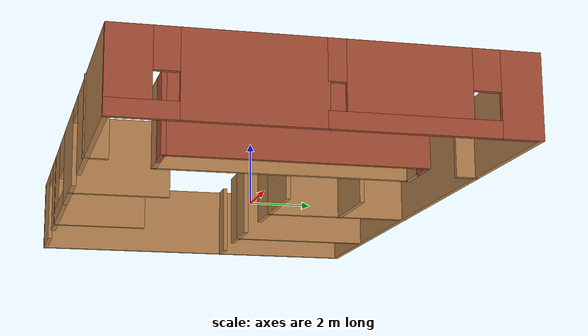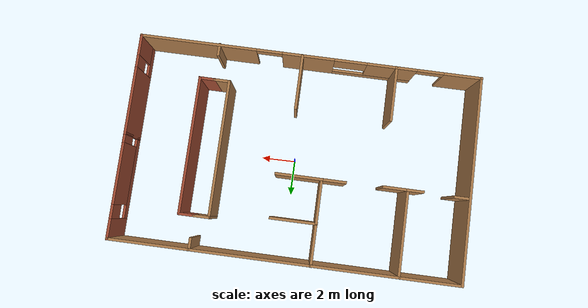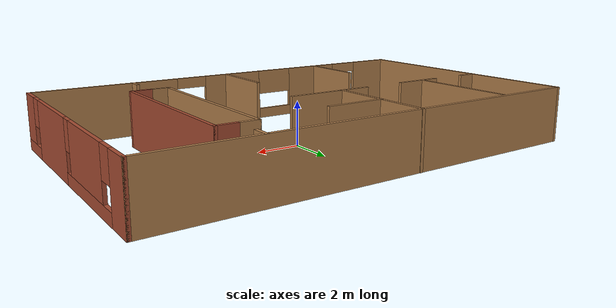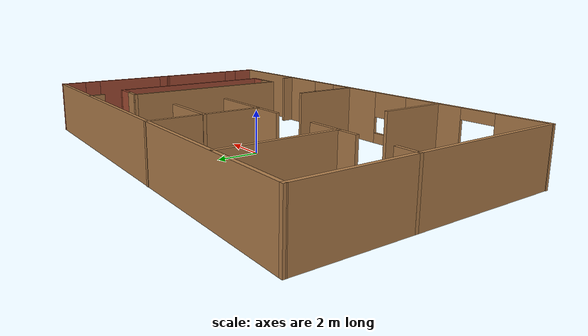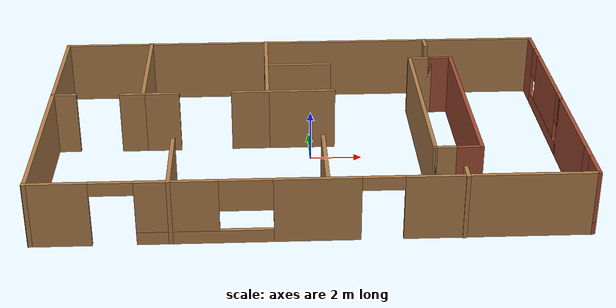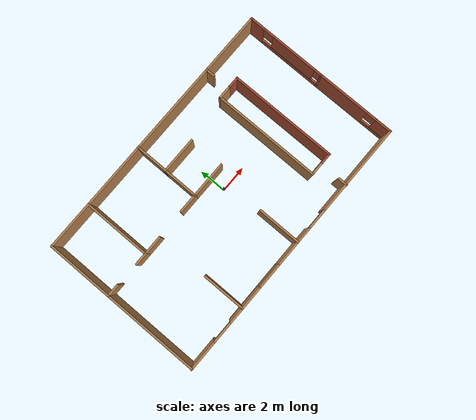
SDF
<?xml version='1.0'?>
<sdf version='1.7'>
  <model name='restaurant'>
    <pose>-0.158341 -0.051022 0 0 -0 0</pose>
    <link name='Wall_14'>
      <pose>9.93178 -2.98994 0 0 -0 -1.56964</pose>
      <visual name='Wall_14_Visual_0'>
        <pose>-0.989557 0 1.25 0 -0 0</pose>
        <geometry>
          <box>
            <size>3.98617 0.15 2.5</size>
          </box>
        </geometry>
        <material>
          <script>
            <uri>file://media/materials/scripts/gazebo.material</uri>
            <name>Gazebo/Bricks</name>
          </script>
          <ambient>1 1 1 1</ambient>
        </material>
        <meta>
          <layer>0</layer>
        </meta>
      </visual>
      <collision name='Wall_14_Collision_0'>
        <geometry>
          <box>
            <size>3.98617 0.15 2.5</size>
          </box>
        </geometry>
        <pose>-0.989557 0 1.25 0 -0 0</pose>
      </collision>
      <visual name='Wall_14_Visual_1'>
        <pose>1.99308 0 0.25 0 -0 0</pose>
        <geometry>
          <box>
            <size>1.97911 0.15 0.5</size>
          </box>
        </geometry>
        <material>
          <script>
            <uri>file://media/materials/scripts/gazebo.material</uri>
            <name>Gazebo/Bricks</name>
          </script>
          <ambient>1 1 1 1</ambient>
        </material>
        <meta>
          <layer>0</layer>
        </meta>
      </visual>
      <collision name='Wall_14_Collision_1'>
        <geometry>
          <box>
            <size>1.97911 0.15 0.5</size>
          </box>
        </geometry>
        <pose>1.99308 0 0.25 0 -0 0</pose>
      </collision>
      <visual name='Wall_14_Visual_2'>
        <pose>2.35186 0 1.5 0 -0 0</pose>
        <geometry>
          <box>
            <size>1.26156 0.15 2</size>
          </box>
        </geometry>
        <material>
          <script>
            <uri>file://media/materials/scripts/gazebo.material</uri>
            <name>Gazebo/Bricks</name>
          </script>
          <ambient>1 1 1 1</ambient>
        </material>
        <meta>
          <layer>0</layer>
        </meta>
      </visual>
      <collision name='Wall_14_Collision_2'>
        <geometry>
          <box>
            <size>1.26156 0.15 2</size>
          </box>
        </geometry>
        <pose>2.35186 0 1.5 0 -0 0</pose>
      </collision>
      <visual name='Wall_14_Visual_3'>
        <pose>1.36231 0 1.9 0 -0 0</pose>
        <geometry>
          <box>
            <size>0.717555 0.15 1.2</size>
          </box>
        </geometry>
        <material>
          <script>
            <uri>file://media/materials/scripts/gazebo.material</uri>
            <name>Gazebo/Bricks</name>
          </script>
          <ambient>1 1 1 1</ambient>
        </material>
        <meta>
          <layer>0</layer>
        </meta>
      </visual>
      <collision name='Wall_14_Collision_3'>
        <geometry>
          <box>
            <size>0.717555 0.15 1.2</size>
          </box>
        </geometry>
        <pose>1.36231 0 1.9 0 -0 0</pose>
      </collision>
    </link>
    <link name='Wall_15'>
      <pose>-0.010231 -5.89748 0 0 -0 3.14159</pose>
      <visual name='Wall_15_Visual_0'>
        <pose>-6.59523 0 1.25 0 -0 0</pose>
        <geometry>
          <box>
            <size>6.80954 0.15 2.5</size>
          </box>
        </geometry>
        <material>
          <script>
            <uri>file://media/materials/scripts/gazebo.material</uri>
            <name>Gazebo/Wood</name>
          </script>
          <ambient>1 1 1 1</ambient>
        </material>
        <meta>
          <layer>0</layer>
        </meta>
      </visual>
      <collision name='Wall_15_Collision_0'>
        <geometry>
          <box>
            <size>6.80954 0.15 2.5</size>
          </box>
        </geometry>
        <pose>-6.59523 0 1.25 0 -0 0</pose>
      </collision>
      <visual name='Wall_15_Visual_1'>
        <pose>-0.152511 0 1.25 0 -0 0</pose>
        <geometry>
          <box>
            <size>3.07169 0.15 2.5</size>
          </box>
        </geometry>
        <material>
          <script>
            <uri>file://media/materials/scripts/gazebo.material</uri>
            <name>Gazebo/Wood</name>
          </script>
          <ambient>1 1 1 1</ambient>
        </material>
        <meta>
          <layer>0</layer>
        </meta>
      </visual>
      <collision name='Wall_15_Collision_1'>
        <geometry>
          <box>
            <size>3.07169 0.15 2.5</size>
          </box>
        </geometry>
        <pose>-0.152511 0 1.25 0 -0 0</pose>
      </collision>
      <visual name='Wall_15_Visual_2'>
        <pose>8.87248 0 1.25 0 -0 0</pose>
        <geometry>
          <box>
            <size>2.25504 0.15 2.5</size>
          </box>
        </geometry>
        <material>
          <script>
            <uri>file://media/materials/scripts/gazebo.material</uri>
            <name>Gazebo/Wood</name>
          </script>
          <ambient>1 1 1 1</ambient>
        </material>
        <meta>
          <layer>0</layer>
        </meta>
      </visual>
      <collision name='Wall_15_Collision_2'>
        <geometry>
          <box>
            <size>2.25504 0.15 2.5</size>
          </box>
        </geometry>
        <pose>8.87248 0 1.25 0 -0 0</pose>
      </collision>
      <visual name='Wall_15_Visual_3'>
        <pose>3.7864 0 0.25 0 -0 0</pose>
        <geometry>
          <box>
            <size>4.80612 0.15 0.5</size>
          </box>
        </geometry>
        <material>
          <script>
            <uri>file://media/materials/scripts/gazebo.material</uri>
            <name>Gazebo/Wood</name>
          </script>
          <ambient>1 1 1 1</ambient>
        </material>
        <meta>
          <layer>0</layer>
        </meta>
      </visual>
      <collision name='Wall_15_Collision_3'>
        <geometry>
          <box>
            <size>4.80612 0.15 0.5</size>
          </box>
        </geometry>
        <pose>3.7864 0 0.25 0 -0 0</pose>
      </collision>
      <visual name='Wall_15_Visual_4'>
        <pose>4.72994 0 1.5 0 -0 0</pose>
        <geometry>
          <box>
            <size>2.91902 0.15 2</size>
          </box>
        </geometry>
        <material>
          <script>
            <uri>file://media/materials/scripts/gazebo.material</uri>
            <name>Gazebo/Wood</name>
          </script>
          <ambient>1 1 1 1</ambient>
        </material>
        <meta>
          <layer>0</layer>
        </meta>
      </visual>
      <collision name='Wall_15_Collision_4'>
        <geometry>
          <box>
            <size>2.91902 0.15 2</size>
          </box>
        </geometry>
        <pose>4.72994 0 1.5 0 -0 0</pose>
      </collision>
      <visual name='Wall_15_Visual_5'>
        <pose>2.32688 0 1.9 0 -0 0</pose>
        <geometry>
          <box>
            <size>1.88709 0.15 1.2</size>
          </box>
        </geometry>
        <material>
          <script>
            <uri>file://media/materials/scripts/gazebo.material</uri>
            <name>Gazebo/Wood</name>
          </script>
          <ambient>1 1 1 1</ambient>
        </material>
        <meta>
          <layer>0</layer>
        </meta>
      </visual>
      <collision name='Wall_15_Collision_5'>
        <geometry>
          <box>
            <size>1.88709 0.15 1.2</size>
          </box>
        </geometry>
        <pose>2.32688 0 1.9 0 -0 0</pose>
      </collision>
      <visual name='Wall_15_Visual_6'>
        <pose>-2.43941 0 2.25 0 -0 0</pose>
        <geometry>
          <box>
            <size>1.5021 0.15 0.5</size>
          </box>
        </geometry>
        <material>
          <script>
            <uri>file://media/materials/scripts/gazebo.material</uri>
            <name>Gazebo/Wood</name>
          </script>
          <ambient>1 1 1 1</ambient>
        </material>
        <meta>
          <layer>0</layer>
        </meta>
      </visual>
      <collision name='Wall_15_Collision_6'>
        <geometry>
          <box>
            <size>1.5021 0.15 0.5</size>
          </box>
        </geometry>
        <pose>-2.43941 0 2.25 0 -0 0</pose>
      </collision>
      <visual name='Wall_15_Visual_7'>
        <pose>6.9672 0 2.25 0 -0 0</pose>
        <geometry>
          <box>
            <size>1.5555 0.15 0.5</size>
          </box>
        </geometry>
        <material>
          <script>
            <uri>file://media/materials/scripts/gazebo.material</uri>
            <name>Gazebo/Wood</name>
          </script>
          <ambient>1 1 1 1</ambient>
        </material>
        <meta>
          <layer>0</layer>
        </meta>
      </visual>
      <collision name='Wall_15_Collision_7'>
        <geometry>
          <box>
            <size>1.5555 0.15 0.5</size>
          </box>
        </geometry>
        <pose>6.9672 0 2.25 0 -0 0</pose>
      </collision>
    </link>
    <link name='Wall_16'>
      <collision name='Wall_16_Collision'>
        <geometry>
          <box>
            <size>11.9652 0.15 2.5</size>
          </box>
        </geometry>
        <pose>0 0 1.25 0 -0 0</pose>
      </collision>
      <visual name='Wall_16_Visual'>
        <pose>0 0 1.25 0 -0 0</pose>
        <geometry>
          <box>
            <size>11.9652 0.15 2.5</size>
          </box>
        </geometry>
        <material>
          <script>
            <uri>file://media/materials/scripts/gazebo.material</uri>
            <name>Gazebo/Wood</name>
          </script>
          <ambient>1 1 1 1</ambient>
        </material>
        <meta>
          <layer>0</layer>
        </meta>
      </visual>
      <pose>-9.91822 0.010065 0 0 -0 1.57137</pose>
    </link>
    <link name='Wall_17'>
      <collision name='Wall_17_Collision'>
        <geometry>
          <box>
            <size>20 0.15 2.5</size>
          </box>
        </geometry>
        <pose>0 0 1.25 0 -0 0</pose>
      </collision>
      <visual name='Wall_17_Visual'>
        <pose>0 0 1.25 0 -0 0</pose>
        <geometry>
          <box>
            <size>20 0.15 2.5</size>
          </box>
        </geometry>
        <material>
          <script>
            <uri>file://media/materials/scripts/gazebo.material</uri>
            <name>Gazebo/Wood</name>
          </script>
          <ambient>1 1 1 1</ambient>
        </material>
        <meta>
          <layer>0</layer>
        </meta>
      </visual>
      <pose>0.003408 5.91761 0 0 -0 0</pose>
    </link>
    <link name='Wall_18'>
      <pose>9.92841 2.91761 0 0 -0 -1.5708</pose>
      <visual name='Wall_18_Visual_0'>
        <pose>-2.47664 0 1.25 0 -0 0</pose>
        <geometry>
          <box>
            <size>1.19672 0.15 2.5</size>
          </box>
        </geometry>
        <material>
          <script>
            <uri>file://media/materials/scripts/gazebo.material</uri>
            <name>Gazebo/Bricks</name>
          </script>
          <ambient>1 1 1 1</ambient>
        </material>
        <meta>
          <layer>0</layer>
        </meta>
      </visual>
      <collision name='Wall_18_Collision_0'>
        <geometry>
          <box>
            <size>1.19672 0.15 2.5</size>
          </box>
        </geometry>
        <pose>-2.47664 0 1.25 0 -0 0</pose>
      </collision>
      <visual name='Wall_18_Visual_1'>
        <pose>0.59836 0 0.25 0 -0 0</pose>
        <geometry>
          <box>
            <size>4.95328 0.15 0.5</size>
          </box>
        </geometry>
        <material>
          <script>
            <uri>file://media/materials/scripts/gazebo.material</uri>
            <name>Gazebo/Bricks</name>
          </script>
          <ambient>1 1 1 1</ambient>
        </material>
        <meta>
          <layer>0</layer>
        </meta>
      </visual>
      <collision name='Wall_18_Collision_1'>
        <geometry>
          <box>
            <size>4.95328 0.15 0.5</size>
          </box>
        </geometry>
        <pose>0.59836 0 0.25 0 -0 0</pose>
      </collision>
      <visual name='Wall_18_Visual_2'>
        <pose>0.693485 0 1.5 0 -0 0</pose>
        <geometry>
          <box>
            <size>3.54353 0.15 2</size>
          </box>
        </geometry>
        <material>
          <script>
            <uri>file://media/materials/scripts/gazebo.material</uri>
            <name>Gazebo/Bricks</name>
          </script>
          <ambient>1 1 1 1</ambient>
        </material>
        <meta>
          <layer>0</layer>
        </meta>
      </visual>
      <collision name='Wall_18_Collision_2'>
        <geometry>
          <box>
            <size>3.54353 0.15 2</size>
          </box>
        </geometry>
        <pose>0.693485 0 1.5 0 -0 0</pose>
      </collision>
      <visual name='Wall_18_Visual_3'>
        <pose>0.693485 0 1.5 0 -0 0</pose>
        <geometry>
          <box>
            <size>3.54353 0.15 2</size>
          </box>
        </geometry>
        <material>
          <script>
            <uri>file://media/materials/scripts/gazebo.material</uri>
            <name>Gazebo/Bricks</name>
          </script>
          <ambient>1 1 1 1</ambient>
        </material>
        <meta>
          <layer>0</layer>
        </meta>
      </visual>
      <collision name='Wall_18_Collision_3'>
        <geometry>
          <box>
            <size>3.54353 0.15 2</size>
          </box>
        </geometry>
        <pose>0.693485 0 1.5 0 -0 0</pose>
      </collision>
      <visual name='Wall_18_Visual_4'>
        <pose>-1.47828 0 1.9 0 -0 0</pose>
        <geometry>
          <box>
            <size>0.8 0.15 1.2</size>
          </box>
        </geometry>
        <material>
          <script>
            <uri>file://media/materials/scripts/gazebo.material</uri>
            <name>Gazebo/Bricks</name>
          </script>
          <ambient>1 1 1 1</ambient>
        </material>
        <meta>
          <layer>0</layer>
        </meta>
      </visual>
      <collision name='Wall_18_Collision_4'>
        <geometry>
          <box>
            <size>0.8 0.15 1.2</size>
          </box>
        </geometry>
        <pose>-1.47828 0 1.9 0 -0 0</pose>
      </collision>
      <visual name='Wall_18_Visual_5'>
        <pose>2.77013 0 1.9 0 -0 0</pose>
        <geometry>
          <box>
            <size>0.60975 0.15 1.2</size>
          </box>
        </geometry>
        <material>
          <script>
            <uri>file://media/materials/scripts/gazebo.material</uri>
            <name>Gazebo/Bricks</name>
          </script>
          <ambient>1 1 1 1</ambient>
        </material>
        <meta>
          <layer>0</layer>
        </meta>
      </visual>
      <collision name='Wall_18_Collision_5'>
        <geometry>
          <box>
            <size>0.60975 0.15 1.2</size>
          </box>
        </geometry>
        <pose>2.77013 0 1.9 0 -0 0</pose>
      </collision>
      <visual name='Wall_18_Visual_6'>
        <pose>2.77013 0 1.9 0 -0 0</pose>
        <geometry>
          <box>
            <size>0.60975 0.15 1.2</size>
          </box>
        </geometry>
        <material>
          <script>
            <uri>file://media/materials/scripts/gazebo.material</uri>
            <name>Gazebo/Bricks</name>
          </script>
          <ambient>1 1 1 1</ambient>
        </material>
        <meta>
          <layer>0</layer>
        </meta>
      </visual>
      <collision name='Wall_18_Collision_6'>
        <geometry>
          <box>
            <size>0.60975 0.15 1.2</size>
          </box>
        </geometry>
        <pose>2.77013 0 1.9 0 -0 0</pose>
      </collision>
    </link>
    <link name='Wall_22'>
      <collision name='Wall_22_Collision'>
        <geometry>
          <box>
            <size>0.75 0.15 2.5</size>
          </box>
        </geometry>
        <pose>0 0 1.25 0 -0 0</pose>
      </collision>
      <visual name='Wall_22_Visual'>
        <pose>0 0 1.25 0 -0 0</pose>
        <geometry>
          <box>
            <size>0.75 0.15 2.5</size>
          </box>
        </geometry>
        <material>
          <script>
            <uri>file://media/materials/scripts/gazebo.material</uri>
            <name>Gazebo/Wood</name>
          </script>
          <ambient>1 1 1 1</ambient>
        </material>
        <meta>
          <layer>0</layer>
        </meta>
      </visual>
      <pose>5.35251 -5.63541 0 0 -0 1.5708</pose>
    </link>
    <link name='Wall_24'>
      <collision name='Wall_24_Collision'>
        <geometry>
          <box>
            <size>0.75 0.15 2.5</size>
          </box>
        </geometry>
        <pose>0 0 1.25 0 -0 0</pose>
      </collision>
      <visual name='Wall_24_Visual'>
        <pose>0 0 1.25 0 -0 0</pose>
        <geometry>
          <box>
            <size>0.75 0.15 2.5</size>
          </box>
        </geometry>
        <material>
          <script>
            <uri>file://media/materials/scripts/gazebo.material</uri>
            <name>Gazebo/Wood</name>
          </script>
          <ambient>1 1 1 1</ambient>
        </material>
        <meta>
          <layer>0</layer>
        </meta>
      </visual>
      <pose>5.31682 5.61552 0 0 -0 -1.5708</pose>
    </link>
    <link name='Wall_26'>
      <collision name='Wall_26_Collision'>
        <geometry>
          <box>
            <size>5 0.15 2.5</size>
          </box>
        </geometry>
        <pose>0 0 1.25 0 -0 0</pose>
      </collision>
      <visual name='Wall_26_Visual'>
        <pose>0 0 1.25 0 -0 0</pose>
        <geometry>
          <box>
            <size>5 0.15 2.5</size>
          </box>
        </geometry>
        <material>
          <script>
            <uri>file://media/materials/scripts/gazebo.material</uri>
            <name>Gazebo/Wood</name>
          </script>
          <ambient>1 1 1 1</ambient>
        </material>
        <meta>
          <layer>0</layer>
        </meta>
      </visual>
      <pose>-6.3931 3.4684 0 0 -0 -1.5708</pose>
    </link>
    <link name='Wall_30'>
      <collision name='Wall_30_Collision'>
        <geometry>
          <box>
            <size>1 0.15 2.5</size>
          </box>
        </geometry>
        <pose>0 0 1.25 0 -0 0</pose>
      </collision>
      <visual name='Wall_30_Visual'>
        <pose>0 0 1.25 0 -0 0</pose>
        <geometry>
          <box>
            <size>1 0.15 2.5</size>
          </box>
        </geometry>
        <material>
          <script>
            <uri>file://media/materials/scripts/gazebo.material</uri>
            <name>Gazebo/Wood</name>
          </script>
          <ambient>1 1 1 1</ambient>
        </material>
        <meta>
          <layer>0</layer>
        </meta>
      </visual>
      <pose>-6.8181 1.0434 0 0 -0 3.14159</pose>
    </link>
    <link name='Wall_34'>
      <collision name='Wall_34_Collision'>
        <geometry>
          <box>
            <size>1 0.15 2.5</size>
          </box>
        </geometry>
        <pose>0 0 1.25 0 -0 0</pose>
      </collision>
      <visual name='Wall_34_Visual'>
        <pose>0 0 1.25 0 -0 0</pose>
        <geometry>
          <box>
            <size>1 0.15 2.5</size>
          </box>
        </geometry>
        <material>
          <script>
            <uri>file://media/materials/scripts/gazebo.material</uri>
            <name>Gazebo/Wood</name>
          </script>
          <ambient>1 1 1 1</ambient>
        </material>
        <meta>
          <layer>0</layer>
        </meta>
      </visual>
      <pose>-9.49428 1.08722 0 0 -0 0</pose>
    </link>
    <link name='Wall_39'>
      <collision name='Wall_39_Collision'>
        <geometry>
          <box>
            <size>5 0.15 2.5</size>
          </box>
        </geometry>
        <pose>0 0 1.25 0 -0 0</pose>
      </collision>
      <visual name='Wall_39_Visual'>
        <pose>0 0 1.25 0 -0 0</pose>
        <geometry>
          <box>
            <size>5 0.15 2.5</size>
          </box>
        </geometry>
        <material>
          <script>
            <uri>file://media/materials/scripts/gazebo.material</uri>
            <name>Gazebo/Wood</name>
          </script>
          <ambient>1 1 1 1</ambient>
        </material>
        <meta>
          <layer>0</layer>
        </meta>
      </visual>
      <pose>-1.50748 3.51041 0 0 -0 -1.5708</pose>
    </link>
    <link name='Wall_40'>
      <collision name='Wall_40_Collision'>
        <geometry>
          <box>
            <size>1.5 0.15 2.5</size>
          </box>
        </geometry>
        <pose>0 0 1.25 0 -0 0</pose>
      </collision>
      <visual name='Wall_40_Visual'>
        <pose>0 0 1.25 0 -0 0</pose>
        <geometry>
          <box>
            <size>1.5 0.15 2.5</size>
          </box>
        </geometry>
        <material>
          <script>
            <uri>file://media/materials/scripts/gazebo.material</uri>
            <name>Gazebo/Wood</name>
          </script>
          <ambient>1 1 1 1</ambient>
        </material>
        <meta>
          <layer>0</layer>
        </meta>
      </visual>
      <pose>-2.18248 1.0854 0 0 -0 3.14159</pose>
    </link>
    <link name='Wall_42'>
      <collision name='Wall_42_Collision'>
        <geometry>
          <box>
            <size>1.5 0.15 2.5</size>
          </box>
        </geometry>
        <pose>0 0 1.25 0 -0 0</pose>
      </collision>
      <visual name='Wall_42_Visual'>
        <pose>0 0 1.25 0 -0 0</pose>
        <geometry>
          <box>
            <size>1.5 0.15 2.5</size>
          </box>
        </geometry>
        <material>
          <script>
            <uri>file://media/materials/scripts/gazebo.material</uri>
            <name>Gazebo/Wood</name>
          </script>
          <ambient>1 1 1 1</ambient>
        </material>
        <meta>
          <layer>0</layer>
        </meta>
      </visual>
      <pose>-5.7181 1.0434 0 0 -0 0</pose>
    </link>
    <link name='Wall_46'>
      <collision name='Wall_46_Collision'>
        <geometry>
          <box>
            <size>3.25 0.15 2.5</size>
          </box>
        </geometry>
        <pose>0 0 1.25 0 -0 0</pose>
      </collision>
      <visual name='Wall_46_Visual'>
        <pose>0 0 1.25 0 -0 0</pose>
        <geometry>
          <box>
            <size>3.25 0.15 2.5</size>
          </box>
        </geometry>
        <material>
          <script>
            <uri>file://media/materials/scripts/gazebo.material</uri>
            <name>Gazebo/Wood</name>
          </script>
          <ambient>1 1 1 1</ambient>
        </material>
        <meta>
          <layer>0</layer>
        </meta>
      </visual>
      <pose>-5.0066 -4.35047 0 0 -0 1.5708</pose>
    </link>
    <link name='Wall_48'>
      <collision name='Wall_48_Collision'>
        <geometry>
          <box>
            <size>3.25 0.15 2.5</size>
          </box>
        </geometry>
        <pose>0 0 1.25 0 -0 0</pose>
      </collision>
      <visual name='Wall_48_Visual'>
        <pose>0 0 1.25 0 -0 0</pose>
        <geometry>
          <box>
            <size>3.25 0.15 2.5</size>
          </box>
        </geometry>
        <material>
          <script>
            <uri>file://media/materials/scripts/gazebo.material</uri>
            <name>Gazebo/Wood</name>
          </script>
          <ambient>1 1 1 1</ambient>
        </material>
        <meta>
          <layer>0</layer>
        </meta>
      </visual>
      <pose>0.491486 -4.33151 0 0 -0 1.5708</pose>
    </link>
    <link name='Wall_55'>
      <collision name='Wall_55_Collision'>
        <geometry>
          <box>
            <size>1 0.15 2.5</size>
          </box>
        </geometry>
        <pose>0 0 1.25 0 -0 0</pose>
      </collision>
      <visual name='Wall_55_Visual'>
        <pose>0 0 1.25 0 -0 0</pose>
        <geometry>
          <box>
            <size>1 0.15 2.5</size>
          </box>
        </geometry>
        <material>
          <script>
            <uri>file://media/materials/scripts/gazebo.material</uri>
            <name>Gazebo/Wood</name>
          </script>
          <ambient>1 1 1 1</ambient>
        </material>
        <meta>
          <layer>0</layer>
        </meta>
      </visual>
      <pose>4.9079 4.0236 0 0 -0 3.14159</pose>
    </link>
    <link name='Wall_56'>
      <collision name='Wall_56_Collision'>
        <geometry>
          <box>
            <size>8 0.15 2.5</size>
          </box>
        </geometry>
        <pose>0 0 1.25 0 -0 0</pose>
      </collision>
      <visual name='Wall_56_Visual'>
        <pose>0 0 1.25 0 -0 0</pose>
        <geometry>
          <box>
            <size>8 0.15 2.5</size>
          </box>
        </geometry>
        <material>
          <script>
            <uri>file://media/materials/scripts/gazebo.material</uri>
            <name>Gazebo/Wood</name>
          </script>
          <ambient>1 1 1 1</ambient>
        </material>
        <meta>
          <layer>0</layer>
        </meta>
      </visual>
      <pose>4.4829 0.098601 0 0 -0 -1.5708</pose>
    </link>
    <link name='Wall_59'>
      <collision name='Wall_59_Collision'>
        <geometry>
          <box>
            <size>1 0.15 2.5</size>
          </box>
        </geometry>
        <pose>0 0 1.25 0 -0 0</pose>
      </collision>
      <visual name='Wall_59_Visual'>
        <pose>0 0 1.25 0 -0 0</pose>
        <geometry>
          <box>
            <size>1 0.15 2.5</size>
          </box>
        </geometry>
        <material>
          <script>
            <uri>file://media/materials/scripts/gazebo.material</uri>
            <name>Gazebo/Wood</name>
          </script>
          <ambient>1 1 1 1</ambient>
        </material>
        <meta>
          <layer>0</layer>
        </meta>
      </visual>
      <pose>4.9079 -3.8264 0 0 -0 0</pose>
    </link>
    <link name='Wall_61'>
      <collision name='Wall_61_Collision'>
        <geometry>
          <box>
            <size>1 0.15 2.5</size>
          </box>
        </geometry>
        <pose>0 0 1.25 0 -0 0</pose>
      </collision>
      <visual name='Wall_61_Visual'>
        <pose>0 0 1.25 0 -0 0</pose>
        <geometry>
          <box>
            <size>1 0.15 2.5</size>
          </box>
        </geometry>
        <material>
          <script>
            <uri>file://media/materials/scripts/gazebo.material</uri>
            <name>Gazebo/Bricks</name>
          </script>
          <ambient>1 1 1 1</ambient>
        </material>
        <meta>
          <layer>0</layer>
        </meta>
      </visual>
      <pose>5.7579 4.0236 0 0 -0 0</pose>
    </link>
    <link name='Wall_62'>
      <collision name='Wall_62_Collision'>
        <geometry>
          <box>
            <size>8 0.15 2.5</size>
          </box>
        </geometry>
        <pose>0 0 1.25 0 -0 0</pose>
      </collision>
      <visual name='Wall_62_Visual'>
        <pose>0 0 1.25 0 -0 0</pose>
        <geometry>
          <box>
            <size>8 0.15 2.5</size>
          </box>
        </geometry>
        <material>
          <script>
            <uri>file://media/materials/scripts/gazebo.material</uri>
            <name>Gazebo/Bricks</name>
          </script>
          <ambient>1 1 1 1</ambient>
        </material>
        <meta>
          <layer>0</layer>
        </meta>
      </visual>
      <pose>6.1829 0.098601 0 0 -0 -1.5708</pose>
    </link>
    <link name='Wall_63'>
      <collision name='Wall_63_Collision'>
        <geometry>
          <box>
            <size>1 0.15 2.5</size>
          </box>
        </geometry>
        <pose>0 0 1.25 0 -0 0</pose>
      </collision>
      <visual name='Wall_63_Visual'>
        <pose>0 0 1.25 0 -0 0</pose>
        <geometry>
          <box>
            <size>1 0.15 2.5</size>
          </box>
        </geometry>
        <material>
          <script>
            <uri>file://media/materials/scripts/gazebo.material</uri>
            <name>Gazebo/Bricks</name>
          </script>
          <ambient>1 1 1 1</ambient>
        </material>
        <meta>
          <layer>0</layer>
        </meta>
      </visual>
      <pose>5.7579 -3.8264 0 0 -0 3.14159</pose>
    </link>
    <link name='Wall_65'>
      <collision name='Wall_65_Collision'>
        <geometry>
          <box>
            <size>2.75 0.15 2.5</size>
          </box>
        </geometry>
        <pose>0 0 1.25 0 -0 0</pose>
      </collision>
      <visual name='Wall_65_Visual'>
        <pose>0 0 1.25 0 -0 0</pose>
        <geometry>
          <box>
            <size>2.75 0.15 2.5</size>
          </box>
        </geometry>
        <material>
          <script>
            <uri>file://media/materials/scripts/gazebo.material</uri>
            <name>Gazebo/Wood</name>
          </script>
          <ambient>1 1 1 1</ambient>
        </material>
        <meta>
          <layer>0</layer>
        </meta>
      </visual>
      <pose>-0.20748 1.0854 0 0 -0 0</pose>
    </link>
    <link name='Wall_67'>
      <collision name='Wall_67_Collision'>
        <geometry>
          <box>
            <size>2.75 0.15 2.5</size>
          </box>
        </geometry>
        <pose>0 0 1.25 0 -0 0</pose>
      </collision>
      <visual name='Wall_67_Visual'>
        <pose>0 0 1.25 0 -0 0</pose>
        <geometry>
          <box>
            <size>2.75 0.15 2.5</size>
          </box>
        </geometry>
        <material>
          <script>
            <uri>file://media/materials/scripts/gazebo.material</uri>
            <name>Gazebo/Wood</name>
          </script>
          <ambient>1 1 1 1</ambient>
        </material>
        <meta>
          <layer>0</layer>
        </meta>
      </visual>
      <pose>-0.229172 3.59219 0 0 -0 0</pose>
    </link>
    <static>1</static>
  </model>
</sdf>
